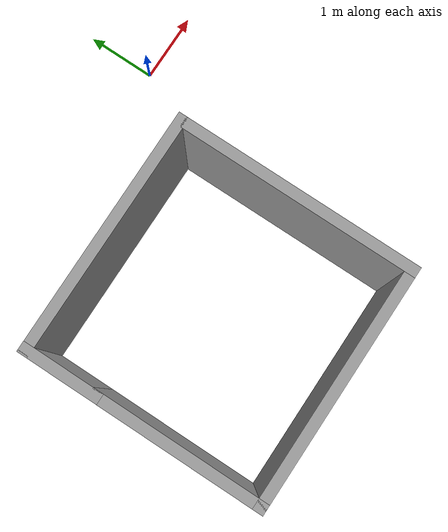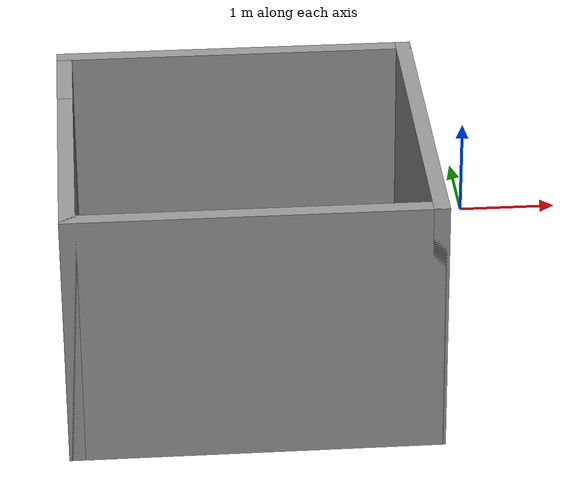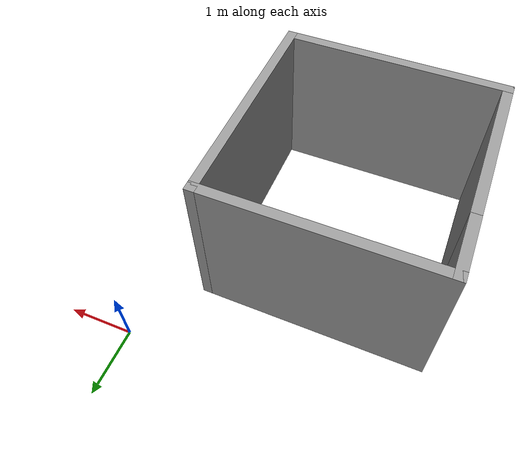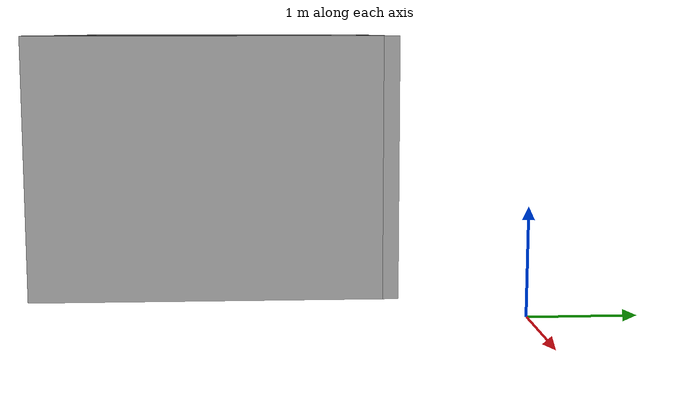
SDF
<?xml version='1.0'?>
<sdf version='1.7'>
  <model name='room2'>
    <pose>-2.0975 -2.2875 0 0 -0 0</pose>
    <link name='Wall_0'>
      <collision name='Wall_0_Collision'>
        <geometry>
          <box>
            <size>2.5 0.15 2.5</size>
          </box>
        </geometry>
        <pose>0 0 1.25 0 -0 0</pose>
      </collision>
      <visual name='Wall_0_Visual'>
        <pose>0 0 1.25 0 -0 0</pose>
        <geometry>
          <box>
            <size>2.5 0.15 2.5</size>
          </box>
        </geometry>
        <material>
          <script>
            <uri>file://media/materials/scripts/gazebo.material</uri>
            <name>Gazebo/Grey</name>
          </script>
          <ambient>1 1 1 1</ambient>
        </material>
        <meta>
          <layer>0</layer>
        </meta>
      </visual>
      <pose>-2.0225 -1.0375 0 0 -0 -1.5708</pose>
    </link>
    <link name='Wall_1'>
      <collision name='Wall_1_Collision'>
        <geometry>
          <box>
            <size>3.5 0.15 2.5</size>
          </box>
        </geometry>
        <pose>0 0 1.25 0 -0 0</pose>
      </collision>
      <visual name='Wall_1_Visual'>
        <pose>0 0 1.25 0 -0 0</pose>
        <geometry>
          <box>
            <size>3.5 0.15 2.5</size>
          </box>
        </geometry>
        <material>
          <script>
            <uri>file://media/materials/scripts/gazebo.material</uri>
            <name>Gazebo/Grey</name>
          </script>
          <ambient>1 1 1 1</ambient>
        </material>
        <meta>
          <layer>0</layer>
        </meta>
      </visual>
      <pose>-0.3475 -2.2125 0 0 -0 0</pose>
    </link>
    <link name='Wall_2'>
      <collision name='Wall_2_Collision'>
        <geometry>
          <box>
            <size>3.5 0.15 2.5</size>
          </box>
        </geometry>
        <pose>0 0 1.25 0 -0 0</pose>
      </collision>
      <visual name='Wall_2_Visual'>
        <pose>0 0 1.25 0 -0 0</pose>
        <geometry>
          <box>
            <size>3.5 0.15 2.5</size>
          </box>
        </geometry>
        <material>
          <script>
            <uri>file://media/materials/scripts/gazebo.material</uri>
            <name>Gazebo/Grey</name>
          </script>
          <ambient>1 1 1 1</ambient>
        </material>
        <meta>
          <layer>0</layer>
        </meta>
      </visual>
      <pose>1.3275 -0.5375 0 0 -0 1.5708</pose>
    </link>
    <link name='Wall_3'>
      <collision name='Wall_3_Collision'>
        <geometry>
          <box>
            <size>3.5 0.15 2.5</size>
          </box>
        </geometry>
        <pose>0 0 1.25 0 -0 0</pose>
      </collision>
      <visual name='Wall_3_Visual'>
        <pose>0 0 1.25 0 -0 0</pose>
        <geometry>
          <box>
            <size>3.5 0.15 2.5</size>
          </box>
        </geometry>
        <material>
          <script>
            <uri>file://media/materials/scripts/gazebo.material</uri>
            <name>Gazebo/Grey</name>
          </script>
          <ambient>1 1 1 1</ambient>
        </material>
        <meta>
          <layer>0</layer>
        </meta>
      </visual>
      <pose>-0.3475 1.1375 0 0 -0 3.14159</pose>
    </link>
    <link name='Wall_4'>
      <collision name='Wall_4_Collision'>
        <geometry>
          <box>
            <size>1.15 0.15 2.5</size>
          </box>
        </geometry>
        <pose>0 0 1.25 0 -0 0</pose>
      </collision>
      <visual name='Wall_4_Visual'>
        <pose>0 0 1.25 0 -0 0</pose>
        <geometry>
          <box>
            <size>1.15 0.15 2.5</size>
          </box>
        </geometry>
        <material>
          <script>
            <uri>file://media/materials/scripts/gazebo.material</uri>
            <name>Gazebo/Grey</name>
          </script>
          <ambient>1 1 1 1</ambient>
        </material>
        <meta>
          <layer>0</layer>
        </meta>
      </visual>
      <pose>-2.0225 0.6375 0 0 -0 -1.5708</pose>
    </link>
    <static>1</static>
  </model>
</sdf>
